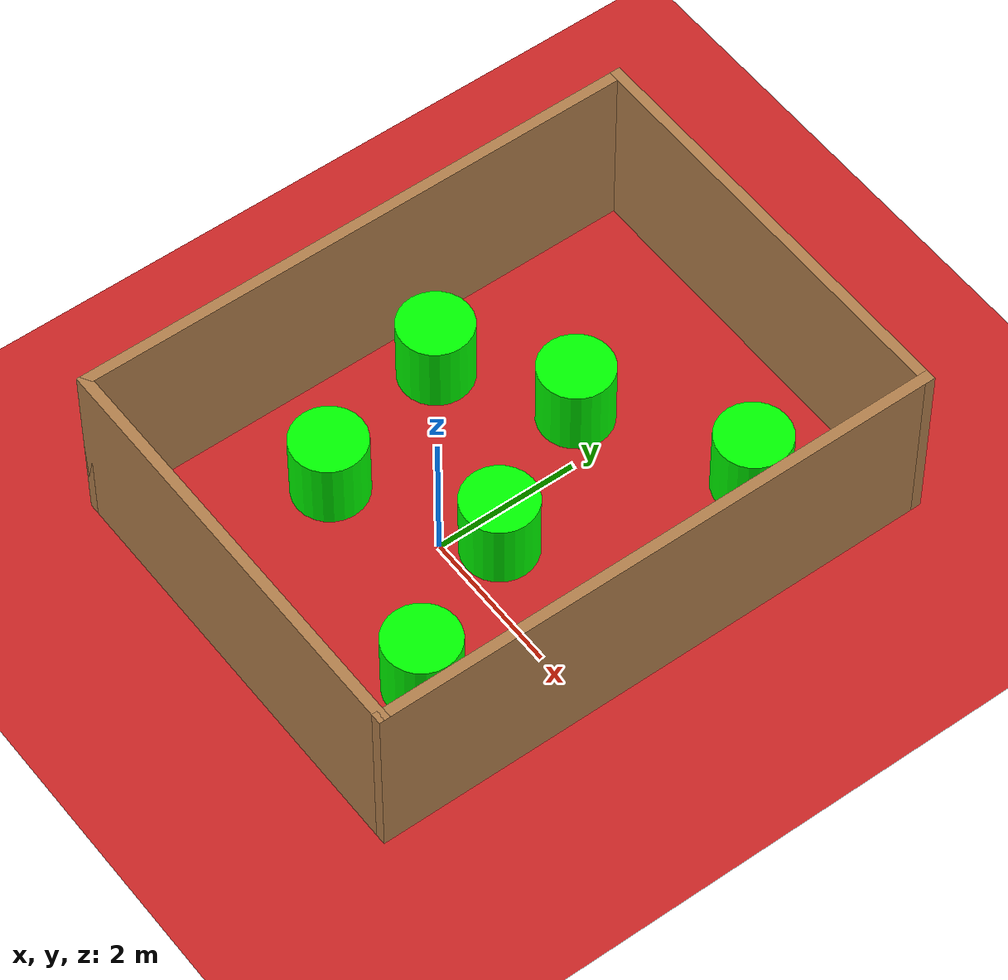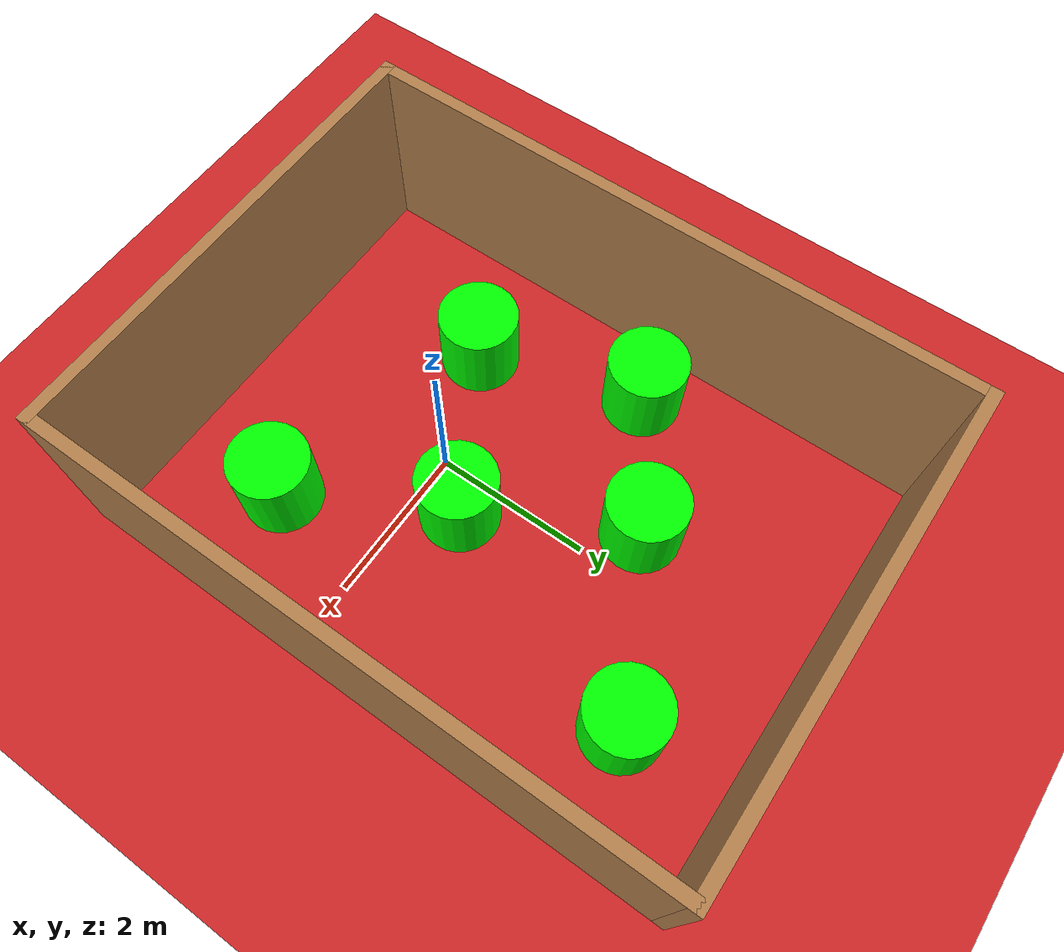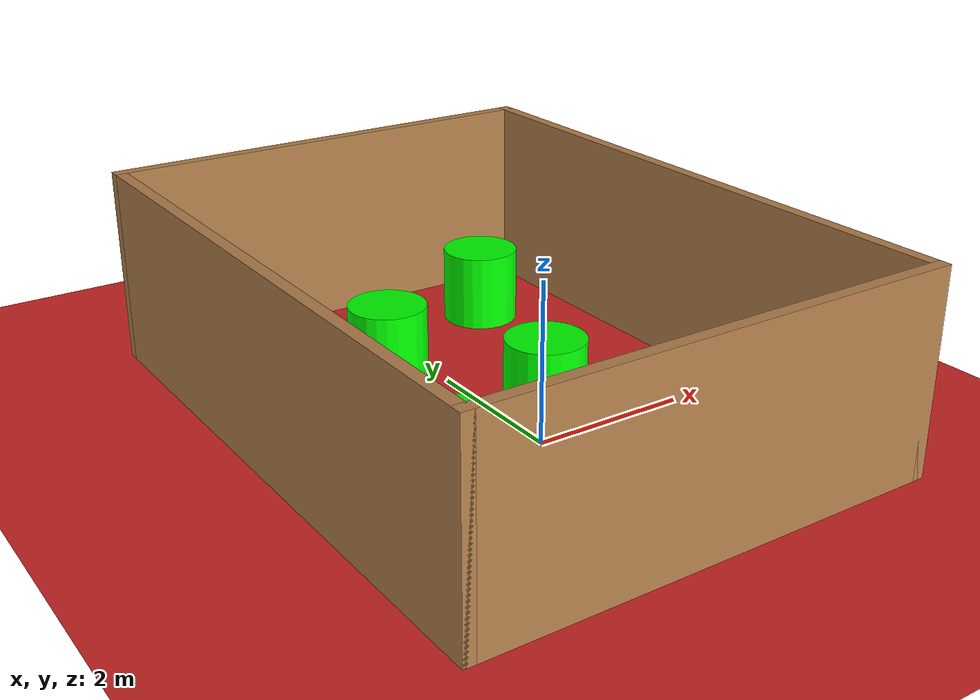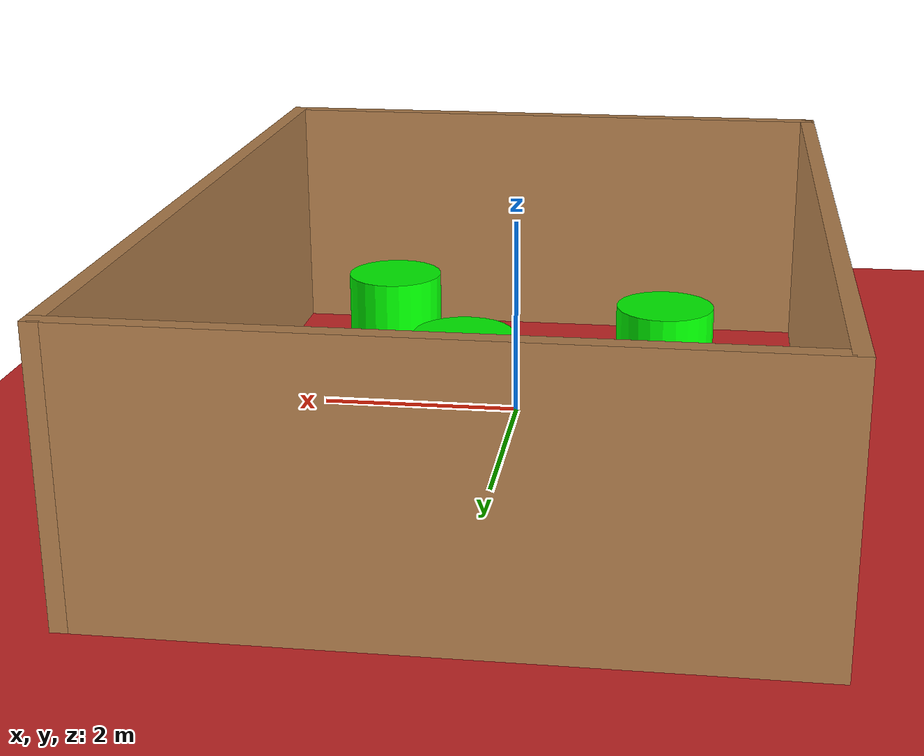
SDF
<sdf version="1.7">
 <world name="test_world">
  <model name="ground_plane">
   <static>1</static>
   <link name="link">
    <collision name="collision">
     <geometry><plane><normal>0 0 1</normal><size>100 100</size></plane></geometry>
    </collision>
    <visual name="visual">
     <geometry><plane><normal>0 0 1</normal><size>100 100</size></plane></geometry>
     <material>
      <script><uri>file://media/materials/scripts/gazebo.material</uri><name>Gazebo/Checkered</name></script>
     </material>
    </visual>
   </link>
  </model>
  <model name="cylinder_model">
   <pose>-1.4787 -0.543435 0.509478 0 -0 0</pose>
   <static>1</static>
   <link name="link">
    <collision name="collision">
     <geometry><cylinder><radius>0.5</radius><length>1</length></cylinder></geometry>
    </collision>
    <visual name="visual">
     <geometry><cylinder><radius>0.5</radius><length>1</length></cylinder></geometry>
     <material><ambient>0 1 0 1</ambient></material>
    </visual>
   </link>
  </model>
  <gravity>0 0 -9.8</gravity>
  <magnetic_field>6e-06 2.3e-05 -4.2e-05</magnetic_field>
  <atmosphere type="adiabatic"/>
  <physics type="ode">
   <max_step_size>0.001</max_step_size>
   <real_time_factor>1</real_time_factor>
   <real_time_update_rate>1000</real_time_update_rate>
  </physics>
  <scene><ambient>0.4 0.4 0.4 1</ambient><background>0.7 0.7 0.7 1</background><shadows>1</shadows></scene>
  <spherical_coordinates>
   <surface_model>EARTH_WGS84</surface_model>
   <latitude_deg>0</latitude_deg>
   <longitude_deg>0</longitude_deg>
   <elevation>0</elevation>
   <heading_deg>0</heading_deg>
  </spherical_coordinates>
  <model name="boundary_wood">
   <pose>-0.04508 1.00747 0 0 -0 0</pose>
   <link name="Wall_5">
    <collision name="Wall_5_Collision">
     <geometry><box><size>8 0.15 2.5</size></box></geometry>
     <pose>0 0 1.25 0 -0 0</pose>
    </collision>
    <visual name="Wall_5_Visual">
     <pose>0 0 1.25 0 -0 0</pose>
     <geometry><box><size>8 0.15 2.5</size></box></geometry>
     <material>
      <script><uri>file://media/materials/scripts/gazebo.material</uri><name>Gazebo/Wood</name></script>
      <ambient>1 1 1 1</ambient>
     </material>
     <meta><layer>0</layer></meta>
    </visual>
    <pose>-2.90067 0 0 0 -0 -1.5708</pose>
   </link>
   <link name="Wall_7">
    <collision name="Wall_7_Collision">
     <geometry><box><size>6 0.15 2.5</size></box></geometry>
     <pose>0 0 1.25 0 -0 0</pose>
    </collision>
    <visual name="Wall_7_Visual">
     <pose>0 0 1.25 0 -0 0</pose>
     <geometry><box><size>6 0.15 2.5</size></box></geometry>
     <material>
      <script><uri>file://media/materials/scripts/gazebo.material</uri><name>Gazebo/Wood</name></script>
      <ambient>1 1 1 1</ambient>
     </material>
     <meta><layer>0</layer></meta>
    </visual>
    <pose>0.024326 -3.925 0 0 -0 0</pose>
   </link>
   <link name="Wall_8">
    <collision name="Wall_8_Collision">
     <geometry><box><size>8 0.15 2.5</size></box></geometry>
     <pose>0 0 1.25 0 -0 0</pose>
    </collision>
    <visual name="Wall_8_Visual">
     <pose>0 0 1.25 0 -0 0</pose>
     <geometry><box><size>8 0.15 2.5</size></box></geometry>
     <material>
      <script><uri>file://media/materials/scripts/gazebo.material</uri><name>Gazebo/Wood</name></script>
      <ambient>1 1 1 1</ambient>
     </material>
     <meta><layer>0</layer></meta>
    </visual>
    <pose>2.94933 0 0 0 -0 1.5708</pose>
   </link>
   <link name="Wall_9">
    <collision name="Wall_9_Collision">
     <geometry><box><size>6 0.15 2.5</size></box></geometry>
     <pose>0 0 1.25 0 -0 0</pose>
    </collision>
    <visual name="Wall_9_Visual">
     <pose>0 0 1.25 0 -0 0</pose>
     <geometry><box><size>6 0.15 2.5</size></box></geometry>
     <material>
      <script><uri>file://media/materials/scripts/gazebo.material</uri><name>Gazebo/Wood</name></script>
      <ambient>1 1 1 1</ambient>
     </material>
     <meta><layer>0</layer></meta>
    </visual>
    <pose>0.024326 3.925 0 0 -0 3.14159</pose>
   </link>
   <static>1</static>
  </model>
  <plugin name="gazebo_occupancy_map" filename="libgazebo_2Dmap_plugin.so">
   <map_resolution>0.1</map_resolution>
   <map_height>0.3</map_height>
   <map_size_x>10</map_size_x>
   <map_size_y>10</map_size_y>
   <init_robot_x>0</init_robot_x>
   <init_robot_y>0</init_robot_y>
  </plugin>
  <model name="cylinder_model_clone">
   <pose>0.45624 0.55817 0.509478 0 -0 0</pose>
   <static>1</static>
   <link name="link">
    <collision name="collision">
     <geometry><cylinder><radius>0.5</radius><length>1</length></cylinder></geometry>
    </collision>
    <visual name="visual">
     <geometry><cylinder><radius>0.5</radius><length>1</length></cylinder></geometry>
     <material><ambient>0 1 0 1</ambient></material>
    </visual>
   </link>
  </model>
  <model name="cylinder_model_clone_0">
   <pose>-0.57057 2.48772 0.509478 0 -0 0</pose>
   <static>1</static>
   <link name="link">
    <collision name="collision">
     <geometry><cylinder><radius>0.5</radius><length>1</length></cylinder></geometry>
    </collision>
    <visual name="visual">
     <geometry><cylinder><radius>0.5</radius><length>1</length></cylinder></geometry>
     <material><ambient>0 1 0 1</ambient></material>
    </visual>
   </link>
  </model>
  <model name="cylinder_model_clone_1">
   <pose>1.50494 -1.35676 0.509478 0 -0 0</pose>
   <static>1</static>
   <link name="link">
    <collision name="collision">
     <geometry><cylinder><radius>0.5</radius><length>1</length></cylinder></geometry>
    </collision>
    <visual name="visual">
     <geometry><cylinder><radius>0.5</radius><length>1</length></cylinder></geometry>
     <material><ambient>0 1 0 1</ambient></material>
    </visual>
   </link>
  </model>
  <model name="cylinder_model_clone_2">
   <pose>-2.12534 1.52135 0.509478 0 -0 0</pose>
   <static>1</static>
   <link name="link">
    <collision name="collision">
     <geometry><cylinder><radius>0.5</radius><length>1</length></cylinder></geometry>
    </collision>
    <visual name="visual">
     <geometry><cylinder><radius>0.5</radius><length>1</length></cylinder></geometry>
     <material><ambient>0 1 0 1</ambient></material>
    </visual>
   </link>
  </model>
  <model name="cylinder_model_clone_3">
   <pose>1.52293 3.55172 0.509478 0 -0 0</pose>
   <static>1</static>
   <link name="link">
    <collision name="collision">
     <geometry><cylinder><radius>0.5</radius><length>1</length></cylinder></geometry>
    </collision>
    <visual name="visual">
     <geometry><cylinder><radius>0.5</radius><length>1</length></cylinder></geometry>
     <material><ambient>0 1 0 1</ambient></material>
    </visual>
   </link>
  </model>
  <plugin name="gazebo_occupancy_map" filename="libgazebo_2Dmap_plugin.so">
   <map_resolution>0.1</map_resolution>
   <map_height>0.3</map_height>
   <map_size_x>10</map_size_x>
   <map_size_y>10</map_size_y>
   <init_robot_x>0</init_robot_x>
   <init_robot_y>0</init_robot_y>
  </plugin>
 </world>
</sdf>
